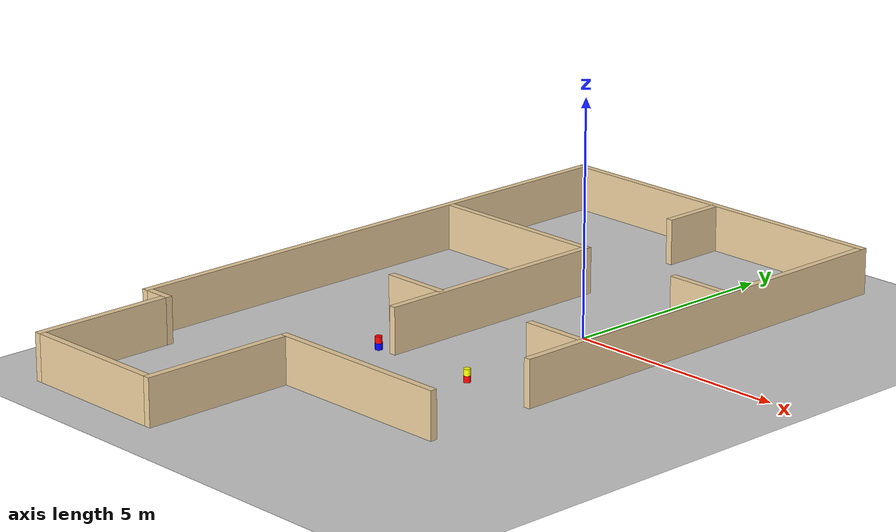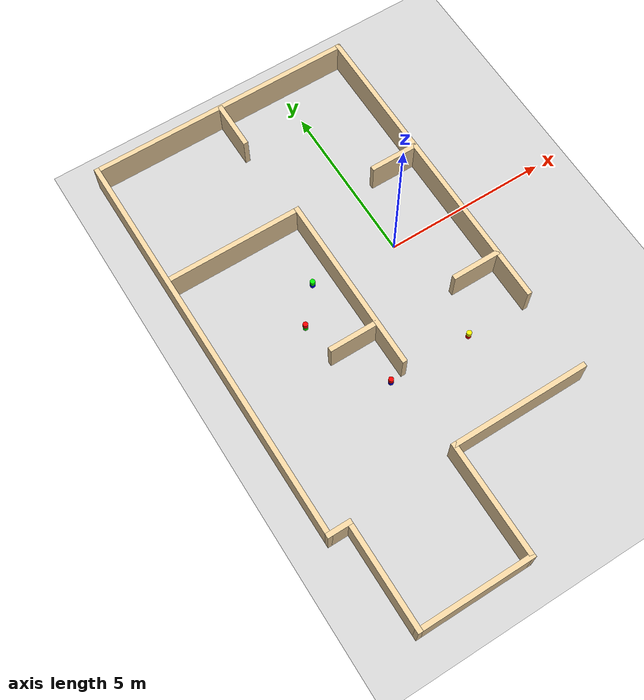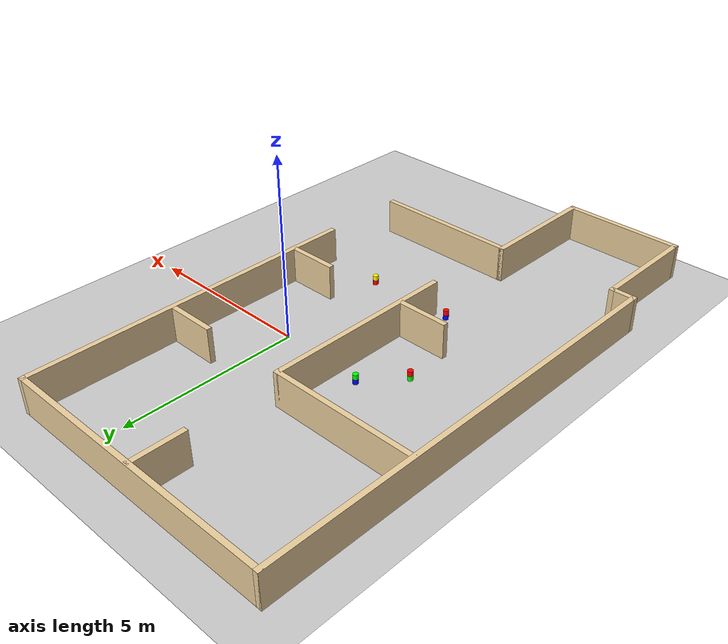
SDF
<sdf version="1.4">
  <world name="default">

    <scene>
      <ambient>0.4 0.4 0.4 1</ambient>
      <background>0.7 0.7 0.7 1</background>
      <shadows>true</shadows>
    </scene>

    <!-- A global light source -->
    <include>
      <uri>model://sun</uri>
    </include>

    <!-- A ground plane -->
    <include>
      <uri>model://ground_plane</uri>
    </include>

    <!-- My Maze -->
    <include>
      <uri>model://maze_1</uri>
	    <pose>-2.05 -1.60 0 0 0 0</pose>
    </include>

    <!-- My Beacons -->
    <include>
      <uri>model://beacon_BG</uri>
	    <pose>-2.6 0.2 0 0 0 0</pose>
    </include>
    <include>
      <uri>model://beacon_GR</uri>
	    <pose>-3.45 -0.8 0 0 0 0</pose>
    </include>
    <include>
      <uri>model://beacon_BR</uri>
	    <pose>-2.35 -3.4 0 0 0 0</pose>
    </include>
    <include>
      <uri>model://beacon_RY</uri>
	    <pose>0.2 -3.4 0 0 0 0</pose>
    </include>

    <physics type="ode">
      <real_time_update_rate>1000.0</real_time_update_rate>
      <max_step_size>0.001</max_step_size>
      <real_time_factor>1</real_time_factor>
      <ode>
        <solver>
          <type>quick</type>
          <iters>150</iters>
          <precon_iters>0</precon_iters>
          <sor>1.400000</sor>
          <use_dynamic_moi_rescaling>1</use_dynamic_moi_rescaling>
        </solver>
        <constraints>
          <cfm>0.00001</cfm>
          <erp>0.2</erp>
          <contact_max_correcting_vel>2000.000000</contact_max_correcting_vel>
          <contact_surface_layer>0.01000</contact_surface_layer>
        </constraints>
      </ode>
    </physics>
  </world>

</sdf>

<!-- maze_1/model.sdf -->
<sdf version='1.6'>
  <model name='maze_1'>
    <pose frame=''>-0.277 -0.861 0 0 -0 0</pose>
    <link name='Wall_65'>
      <collision name='Wall_65_Collision'>
        <geometry>
          <box>
            <size>3.5 0.15 1</size>
          </box>
        </geometry>
        <pose frame=''>0 0 0.5 0 -0 0</pose>
      </collision>
      <visual name='Wall_65_Visual'>
        <pose frame=''>0 0 0.5 0 -0 0</pose>
        <geometry>
          <box>
            <size>3.5 0.15 1</size>
          </box>
        </geometry>
        <material>
          <script>
            <uri>file://media/materials/scripts/gazebo.material</uri>
            <name>Gazebo/Grey</name>
          </script>
          <ambient>0.921569 0.807843 0.615686 1</ambient>
        </material>
        <meta>
          <layer>0</layer>
        </meta>
      </visual>
      <pose frame=''>-1.775 -7.725 0 0 -0 0</pose>
    </link>
    <link name='Wall_66'>
      <collision name='Wall_66_Collision'>
        <geometry>
          <box>
            <size>3.5 0.15 1</size>
          </box>
        </geometry>
        <pose frame=''>0 0 0.5 0 -0 0</pose>
      </collision>
      <visual name='Wall_66_Visual'>
        <pose frame=''>0 0 0.5 0 -0 0</pose>
        <geometry>
          <box>
            <size>3.5 0.15 1</size>
          </box>
        </geometry>
        <material>
          <script>
            <uri>file://media/materials/scripts/gazebo.material</uri>
            <name>Gazebo/Grey</name>
          </script>
          <ambient>0.921569 0.807843 0.615686 1</ambient>
        </material>
        <meta>
          <layer>0</layer>
        </meta>
      </visual>
      <pose frame=''>-0.1 -6.05 0 0 -0 1.5708</pose>
    </link>
    <link name='Wall_67'>
      <collision name='Wall_67_Collision'>
        <geometry>
          <box>
            <size>4.25 0.15 1</size>
          </box>
        </geometry>
        <pose frame=''>0 0 0.5 0 -0 0</pose>
      </collision>
      <visual name='Wall_67_Visual'>
        <pose frame=''>0 0 0.5 0 -0 0</pose>
        <geometry>
          <box>
            <size>4.25 0.15 1</size>
          </box>
        </geometry>
        <material>
          <script>
            <uri>file://media/materials/scripts/gazebo.material</uri>
            <name>Gazebo/Grey</name>
          </script>
          <ambient>0.921569 0.807843 0.615686 1</ambient>
        </material>
        <meta>
          <layer>0</layer>
        </meta>
      </visual>
      <pose frame=''>1.95 -4.375 0 0 -0 0</pose>
    </link>
    <link name='Wall_69'>
      <collision name='Wall_69_Collision'>
        <geometry>
          <box>
            <size>3.25 0.15 1</size>
          </box>
        </geometry>
        <pose frame=''>0 0 0.5 0 -0 0</pose>
      </collision>
      <visual name='Wall_69_Visual'>
        <pose frame=''>0 0 0.5 0 -0 0</pose>
        <geometry>
          <box>
            <size>3.25 0.15 1</size>
          </box>
        </geometry>
        <material>
          <script>
            <uri>file://media/materials/scripts/gazebo.material</uri>
            <name>Gazebo/Grey</name>
          </script>
          <ambient>0.921569 0.807843 0.615686 1</ambient>
        </material>
        <meta>
          <layer>0</layer>
        </meta>
      </visual>
      <pose frame=''>-3.45 -6.175 0 0 -0 1.5708</pose>
    </link>
    <link name='Wall_72'>
      <collision name='Wall_72_Collision'>
        <geometry>
          <box>
            <size>0.75 0.15 1</size>
          </box>
        </geometry>
        <pose frame=''>0 0 0.5 0 -0 0</pose>
      </collision>
      <visual name='Wall_72_Visual'>
        <pose frame=''>0 0 0.5 0 -0 0</pose>
        <geometry>
          <box>
            <size>0.75 0.15 1</size>
          </box>
        </geometry>
        <material>
          <script>
            <uri>file://media/materials/scripts/gazebo.material</uri>
            <name>Gazebo/Grey</name>
          </script>
          <ambient>0.921569 0.807843 0.615686 1</ambient>
        </material>
        <meta>
          <layer>0</layer>
        </meta>
      </visual>
      <pose frame=''>-3.75 -4.625 0 0 -0 3.14159</pose>
    </link>
    <link name='Wall_73'>
      <collision name='Wall_73_Collision'>
        <geometry>
          <box>
            <size>12.5 0.15 1</size>
          </box>
        </geometry>
        <pose frame=''>0 0 0.5 0 -0 0</pose>
      </collision>
      <visual name='Wall_73_Visual'>
        <pose frame=''>0 0 0.5 0 -0 0</pose>
        <geometry>
          <box>
            <size>12.5 0.15 1</size>
          </box>
        </geometry>
        <material>
          <script>
            <uri>file://media/materials/scripts/gazebo.material</uri>
            <name>Gazebo/Grey</name>
          </script>
          <ambient>0.921569 0.807843 0.615686 1</ambient>
        </material>
        <meta>
          <layer>0</layer>
        </meta>
      </visual>
      <pose frame=''>-4.05 1.55 0 0 -0 1.5708</pose>
    </link>
    <link name='Wall_74'>
      <collision name='Wall_74_Collision'>
        <geometry>
          <box>
            <size>8.25 0.15 1</size>
          </box>
        </geometry>
        <pose frame=''>0 0 0.5 0 -0 0</pose>
      </collision>
      <visual name='Wall_74_Visual'>
        <pose frame=''>0 0 0.5 0 -0 0</pose>
        <geometry>
          <box>
            <size>8.25 0.15 1</size>
          </box>
        </geometry>
        <material>
          <script>
            <uri>file://media/materials/scripts/gazebo.material</uri>
            <name>Gazebo/Grey</name>
          </script>
          <ambient>0.921569 0.807843 0.615686 1</ambient>
        </material>
        <meta>
          <layer>0</layer>
        </meta>
      </visual>
      <pose frame=''>0 7.725 0 0 -0 0</pose>
    </link>
    <link name='Wall_75'>
      <collision name='Wall_75_Collision'>
        <geometry>
          <box>
            <size>9.75 0.15 1</size>
          </box>
        </geometry>
        <pose frame=''>0 0 0.5 0 -0 0</pose>
      </collision>
      <visual name='Wall_75_Visual'>
        <pose frame=''>0 0 0.5 0 -0 0</pose>
        <geometry>
          <box>
            <size>9.75 0.15 1</size>
          </box>
        </geometry>
        <material>
          <script>
            <uri>file://media/materials/scripts/gazebo.material</uri>
            <name>Gazebo/Grey</name>
          </script>
          <ambient>0.921569 0.807843 0.615686 1</ambient>
        </material>
        <meta>
          <layer>0</layer>
        </meta>
      </visual>
      <pose frame=''>4.05 2.925 0 0 -0 -1.5708</pose>
    </link>
    <link name='Wall_77'>
      <collision name='Wall_77_Collision'>
        <geometry>
          <box>
            <size>1.5 0.15 1</size>
          </box>
        </geometry>
        <pose frame=''>0 0 0.5 0 -0 0</pose>
      </collision>
      <visual name='Wall_77_Visual'>
        <pose frame=''>0 0 0.5 0 -0 0</pose>
        <geometry>
          <box>
            <size>1.5 0.15 1</size>
          </box>
        </geometry>
        <material>
          <script>
            <uri>file://media/materials/scripts/gazebo.material</uri>
            <name>Gazebo/Grey</name>
          </script>
          <ambient>0.921569 0.807843 0.615686 1</ambient>
        </material>
        <meta>
          <layer>0</layer>
        </meta>
      </visual>
      <pose frame=''>3.331 -0.452 0 0 -0 3.14159</pose>
    </link>
    <link name='Wall_79'>
      <collision name='Wall_79_Collision'>
        <geometry>
          <box>
            <size>1.5 0.15 1</size>
          </box>
        </geometry>
        <pose frame=''>0 0 0.5 0 -0 0</pose>
      </collision>
      <visual name='Wall_79_Visual'>
        <pose frame=''>0 0 0.5 0 -0 0</pose>
        <geometry>
          <box>
            <size>1.5 0.15 1</size>
          </box>
        </geometry>
        <material>
          <script>
            <uri>file://media/materials/scripts/gazebo.material</uri>
            <name>Gazebo/Grey</name>
          </script>
          <ambient>0.921569 0.807843 0.615686 1</ambient>
        </material>
        <meta>
          <layer>0</layer>
        </meta>
      </visual>
      <pose frame=''>3.332 3.618 0 0 -0 3.14159</pose>
    </link>
    <link name='Wall_81'>
      <collision name='Wall_81_Collision'>
        <geometry>
          <box>
            <size>1.5 0.15 1</size>
          </box>
        </geometry>
        <pose frame=''>0 0 0.5 0 -0 0</pose>
      </collision>
      <visual name='Wall_81_Visual'>
        <pose frame=''>0 0 0.5 0 -0 0</pose>
        <geometry>
          <box>
            <size>1.5 0.15 1</size>
          </box>
        </geometry>
        <material>
          <script>
            <uri>file://media/materials/scripts/gazebo.material</uri>
            <name>Gazebo/Grey</name>
          </script>
          <ambient>0.921569 0.807843 0.615686 1</ambient>
        </material>
        <meta>
          <layer>0</layer>
        </meta>
      </visual>
      <pose frame=''>-0.02 7.01178 0 0 -0 -1.5708</pose>
    </link>
    <link name='Wall_83'>
      <collision name='Wall_83_Collision'>
        <geometry>
          <box>
            <size>4.25 0.15 1</size>
          </box>
        </geometry>
        <pose frame=''>0 0 0.5 0 -0 0</pose>
      </collision>
      <visual name='Wall_83_Visual'>
        <pose frame=''>0 0 0.5 0 -0 0</pose>
        <geometry>
          <box>
            <size>4.25 0.15 1</size>
          </box>
        </geometry>
        <material>
          <script>
            <uri>file://media/materials/scripts/gazebo.material</uri>
            <name>Gazebo/Grey</name>
          </script>
          <ambient>0.921569 0.807843 0.615686 1</ambient>
        </material>
        <meta>
          <layer>0</layer>
        </meta>
      </visual>
      <pose frame=''>-1.951 3.625 0 0 -0 0</pose>
    </link>
    <link name='Wall_84'>
      <collision name='Wall_84_Collision'>
        <geometry>
          <box>
            <size>5.5 0.15 1</size>
          </box>
        </geometry>
        <pose frame=''>0 0 0.5 0 -0 0</pose>
      </collision>
      <visual name='Wall_84_Visual'>
        <pose frame=''>0 0 0.5 0 -0 0</pose>
        <geometry>
          <box>
            <size>5.5 0.15 1</size>
          </box>
        </geometry>
        <material>
          <script>
            <uri>file://media/materials/scripts/gazebo.material</uri>
            <name>Gazebo/Grey</name>
          </script>
          <ambient>0.921569 0.807843 0.615686 1</ambient>
        </material>
        <meta>
          <layer>0</layer>
        </meta>
      </visual>
      <pose frame=''>0.099 0.95 0 0 -0 -1.5708</pose>
    </link>
    <link name='Wall_88'>
      <collision name='Wall_88_Collision'>
        <geometry>
          <box>
            <size>1.5 0.15 1</size>
          </box>
        </geometry>
        <pose frame=''>0 0 0.5 0 -0 0</pose>
      </collision>
      <visual name='Wall_88_Visual'>
        <pose frame=''>0 0 0.5 0 -0 0</pose>
        <geometry>
          <box>
            <size>1.5 0.15 1</size>
          </box>
        </geometry>
        <material>
          <script>
            <uri>file://media/materials/scripts/gazebo.material</uri>
            <name>Gazebo/Grey</name>
          </script>
          <ambient>0.921569 0.807843 0.615686 1</ambient>
        </material>
        <meta>
          <layer>0</layer>
        </meta>
      </visual>
      <pose frame=''>-0.656 -0.449 0 0 -0 3.14159</pose>
    </link>
    <static>1</static>
  </model>
</sdf>

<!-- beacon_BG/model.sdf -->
<sdf version='1.4'>
  <model name="beacon_BG">
	<static>true</static>
          <link name='chassis_lower'>
            <pose>0 0 0.07 0 0 0</pose>

            <collision name='collision'>
              <geometry>
                <cylinder>
                  <radius>.075</radius>
		  <length>.140</length>
                </cylinder>
              </geometry>
            </collision>

            <visual name='visual'>
              <geometry>
                <cylinder>
                  <radius>.075</radius>
		  <length>.140</length>
                </cylinder>
              </geometry>
        	<material>
          	  <ambient>0 0 1 1</ambient>
          	  <diffuse>0 0 1 1</diffuse>
          	  <specular>0.1 0.1 0.1 1</specular>
         	  <emissive>0 0 0 0</emissive>
        	</material>
            </visual>
          </link>

          <link name='chassis_upper'>
            <pose>0 0 0.21 0 0 0</pose>

            <collision name='collision'>
              <geometry>
                <cylinder>
                  <radius>.075</radius>
		  <length>.140</length>
                </cylinder>
              </geometry>
            </collision>

            <visual name='visual'>
              <geometry>
                <cylinder>
                  <radius>.075</radius>
		  <length>.140</length>
                </cylinder>
              </geometry>
        	<material>
          	  <ambient>0 1 0 1</ambient>
          	  <diffuse>0 1 0 1</diffuse>
          	  <specular>0.1 0.1 0.1 1</specular>
         	  <emissive>0 0 0 0</emissive>
        	</material>
            </visual>
          </link>

  </model>
</sdf>

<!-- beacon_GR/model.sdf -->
<sdf version='1.4'>
  <model name="beacon_GR">
	<static>true</static>
          <link name='chassis_lower'>
            <pose>0 0 0.07 0 0 0</pose>

            <collision name='collision'>
              <geometry>
                <cylinder>
                  <radius>.075</radius>
		  <length>.140</length>
                </cylinder>
              </geometry>
            </collision>

            <visual name='visual'>
              <geometry>
                <cylinder>
                  <radius>.075</radius>
		  <length>.140</length>
                </cylinder>
              </geometry>
        	<material>
          	  <ambient>0 1 0 1</ambient>
          	  <diffuse>0 1 0 1</diffuse>
          	  <specular>0.1 0.1 0.1 1</specular>
         	  <emissive>0 0 0 0</emissive>
        	</material>
            </visual>
          </link>

          <link name='chassis_upper'>
            <pose>0 0 0.21 0 0 0</pose>

            <collision name='collision'>
              <geometry>
                <cylinder>
                  <radius>.075</radius>
		  <length>.140</length>
                </cylinder>
              </geometry>
            </collision>

            <visual name='visual'>
              <geometry>
                <cylinder>
                  <radius>.075</radius>
		  <length>.140</length>
                </cylinder>
              </geometry>
        	<material>
          	  <ambient>1 0 0 1</ambient>
          	  <diffuse>1 0 0 1</diffuse>
          	  <specular>0.1 0.1 0.1 1</specular>
         	  <emissive>0 0 0 0</emissive>
        	</material>
            </visual>
          </link>

  </model>
</sdf>

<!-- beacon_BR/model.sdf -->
<sdf version='1.4'>
  <model name="beacon_BR">
	<static>true</static>
          <link name='chassis_lower'>
            <pose>0 0 0.07 0 0 0</pose>

            <collision name='collision'>
              <geometry>
                <cylinder>
                  <radius>.075</radius>
		  <length>.140</length>
                </cylinder>
              </geometry>
            </collision>

            <visual name='visual'>
              <geometry>
                <cylinder>
                  <radius>.075</radius>
		  <length>.140</length>
                </cylinder>
              </geometry>
        	<material>
          	  <ambient>0 0 1 1</ambient>
          	  <diffuse>0 0 1 1</diffuse>
          	  <specular>0.1 0.1 0.1 1</specular>
         	  <emissive>0 0 0 0</emissive>
        	</material>
            </visual>
          </link>

          <link name='chassis_upper'>
            <pose>0 0 0.21 0 0 0</pose>

            <collision name='collision'>
              <geometry>
                <cylinder>
                  <radius>.075</radius>
		  <length>.140</length>
                </cylinder>
              </geometry>
            </collision>

            <visual name='visual'>
              <geometry>
                <cylinder>
                  <radius>.075</radius>
		  <length>.140</length>
                </cylinder>
              </geometry>
        	<material>
          	  <ambient>1 0 0 1</ambient>
          	  <diffuse>1 0 0 1</diffuse>
          	  <specular>0.1 0.1 0.1 1</specular>
         	  <emissive>0 0 0 0</emissive>
        	</material>
            </visual>
          </link>

  </model>
</sdf>

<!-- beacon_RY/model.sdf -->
<sdf version='1.4'>
  <model name="beacon_RY">
	<static>true</static>
          <link name='chassis_lower'>
            <pose>0 0 0.07 0 0 0</pose>

            <collision name='collision'>
              <geometry>
                <cylinder>
                  <radius>.075</radius>
		  <length>.140</length>
                </cylinder>
              </geometry>
            </collision>

            <visual name='visual'>
              <geometry>
                <cylinder>
                  <radius>.075</radius>
		  <length>.140</length>
                </cylinder>
              </geometry>
        	<material>
          	  <ambient>1 0 0 1</ambient>
          	  <diffuse>1 0 0 1</diffuse>
          	  <specular>0.1 0.1 0.1 1</specular>
         	  <emissive>0 0 0 0</emissive>
        	</material>
            </visual>
          </link>

          <link name='chassis_upper'>
            <pose>0 0 0.21 0 0 0</pose>

            <collision name='collision'>
              <geometry>
                <cylinder>
                  <radius>.075</radius>
		  <length>.140</length>
                </cylinder>
              </geometry>
            </collision>

            <visual name='visual'>
              <geometry>
                <cylinder>
                  <radius>.075</radius>
		  <length>.140</length>
                </cylinder>
              </geometry>
        	<material>
          	  <ambient>1 1 0 1</ambient>
          	  <diffuse>1 1 0 1</diffuse>
          	  <specular>0.1 0.1 0.1 1</specular>
         	  <emissive>0 0 0 0</emissive>
        	</material>
            </visual>
          </link>

  </model>
</sdf>
